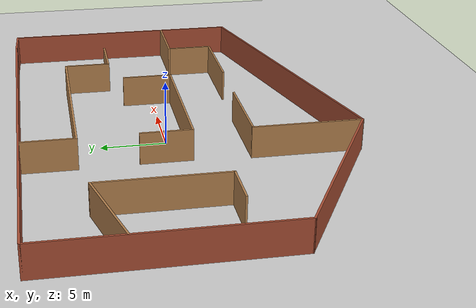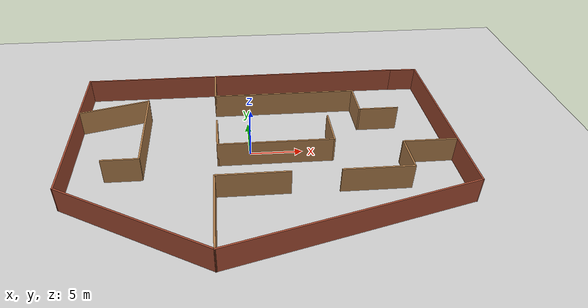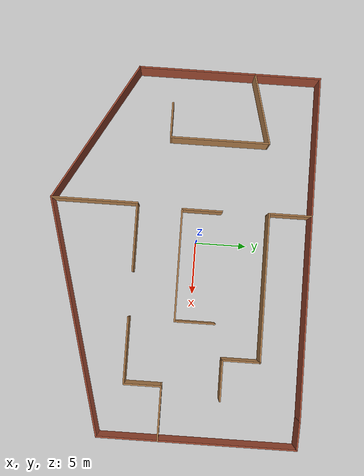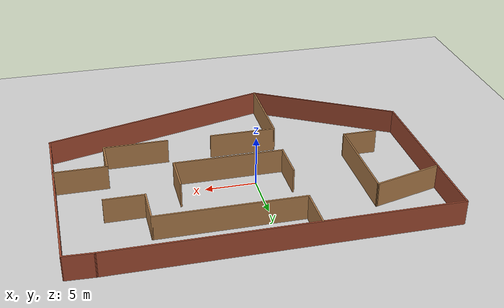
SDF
<sdf version="1.7">
 <world name="default">
  <light name="sun" type="directional">
   <pose>0 0 10 0 -0 0</pose>
   <diffuse>0.8 0.8 0.8 1</diffuse>
   <specular>0.2 0.2 0.2 1</specular>
   <attenuation>
    <range>1000</range>
    <constant>0.9</constant>
    <linear>0.01</linear>
    <quadratic>0.001</quadratic>
   </attenuation>
   <direction>-0.5 0.1 -0.9</direction>
   <spot><inner_angle>0</inner_angle><outer_angle>0</outer_angle><falloff>0</falloff></spot>
  </light>
  <model name="ground_plane">
   <static>1</static>
   <link name="link">
    <collision name="collision">
     <geometry><plane><normal>0 0 1</normal><size>100 100</size></plane></geometry>
     <surface><friction><ode><mu>100</mu><mu2>50</mu2></ode></friction></surface>
    </collision>
    <visual name="visual">
     <cast_shadows>0</cast_shadows>
     <geometry><plane><normal>0 0 1</normal><size>100 100</size></plane></geometry>
     <material>
      <script><uri>file://media/materials/scripts/gazebo.material</uri><name>Gazebo/Grey</name></script>
     </material>
    </visual>
   </link>
  </model>
  <gravity>0 0 -9.8</gravity>
  <magnetic_field>6e-06 2.3e-05 -4.2e-05</magnetic_field>
  <atmosphere type="adiabatic"/>
  <physics type="ode">
   <max_step_size>0.001</max_step_size>
   <real_time_factor>1</real_time_factor>
   <real_time_update_rate>1000</real_time_update_rate>
  </physics>
  <scene><ambient>0.4 0.4 0.4 1</ambient><background>0.7 0.7 0.7 1</background><shadows>1</shadows></scene>
  <audio><device>default</device></audio>
  <spherical_coordinates>
   <surface_model>EARTH_WGS84</surface_model>
   <latitude_deg>0</latitude_deg>
   <longitude_deg>0</longitude_deg>
   <elevation>0</elevation>
   <heading_deg>0</heading_deg>
  </spherical_coordinates>
  <model name="test_world">
   <pose>1.2131 -1.65323 0 0 -0 0</pose>
   <link name="Wall_100">
    <collision name="Wall_100_Collision">
     <geometry><box><size>3.75 0.15 2.5</size></box></geometry>
     <pose>0 0 1.25 0 -0 0</pose>
    </collision>
    <visual name="Wall_100_Visual">
     <pose>0 0 1.25 0 -0 0</pose>
     <geometry><box><size>3.75 0.15 2.5</size></box></geometry>
     <material>
      <script><uri>file://media/materials/scripts/gazebo.material</uri><name>Gazebo/Wood</name></script>
      <ambient>1 1 1 1</ambient>
     </material>
     <meta><layer>0</layer></meta>
    </visual>
    <pose>12.808 -2.5497 0 0 -0 -1.5708</pose>
   </link>
   <link name="Wall_101">
    <collision name="Wall_101_Collision">
     <geometry><box><size>6.5 0.15 2.5</size></box></geometry>
     <pose>0 0 1.25 0 -0 0</pose>
    </collision>
    <visual name="Wall_101_Visual">
     <pose>0 0 1.25 0 -0 0</pose>
     <geometry><box><size>6.5 0.15 2.5</size></box></geometry>
     <material>
      <script><uri>file://media/materials/scripts/gazebo.material</uri><name>Gazebo/Wood</name></script>
      <ambient>1 1 1 1</ambient>
     </material>
     <meta><layer>0</layer></meta>
    </visual>
    <pose>9.63296 -4.3497 0 0 -0 3.14159</pose>
   </link>
   <link name="Wall_103">
    <collision name="Wall_103_Collision">
     <geometry><box><size>4 0.15 2.5</size></box></geometry>
     <pose>0 0 1.25 0 -0 0</pose>
    </collision>
    <visual name="Wall_103_Visual">
     <pose>0 0 1.25 0 -0 0</pose>
     <geometry><box><size>4 0.15 2.5</size></box></geometry>
     <material>
      <script><uri>file://media/materials/scripts/gazebo.material</uri><name>Gazebo/Wood</name></script>
      <ambient>1 1 1 1</ambient>
     </material>
     <meta><layer>0</layer></meta>
    </visual>
    <pose>-4.31004 2.0334 0 0 -0 -1.5708</pose>
   </link>
   <link name="Wall_104">
    <collision name="Wall_104_Collision">
     <geometry><box><size>11 0.15 2.5</size></box></geometry>
     <pose>0 0 1.25 0 -0 0</pose>
    </collision>
    <visual name="Wall_104_Visual">
     <pose>0 0 1.25 0 -0 0</pose>
     <geometry><box><size>11 0.15 2.5</size></box></geometry>
     <material>
      <script><uri>file://media/materials/scripts/gazebo.material</uri><name>Gazebo/Wood</name></script>
      <ambient>1 1 1 1</ambient>
     </material>
     <meta><layer>0</layer></meta>
    </visual>
    <pose>1.11496 0.108402 0 0 -0 0</pose>
   </link>
   <link name="Wall_105">
    <collision name="Wall_105_Collision">
     <geometry><box><size>4 0.15 2.5</size></box></geometry>
     <pose>0 0 1.25 0 -0 0</pose>
    </collision>
    <visual name="Wall_105_Visual">
     <pose>0 0 1.25 0 -0 0</pose>
     <geometry><box><size>4 0.15 2.5</size></box></geometry>
     <material>
      <script><uri>file://media/materials/scripts/gazebo.material</uri><name>Gazebo/Wood</name></script>
      <ambient>1 1 1 1</ambient>
     </material>
     <meta><layer>0</layer></meta>
    </visual>
    <pose>6.53996 2.0334 0 0 -0 1.5708</pose>
   </link>
   <link name="Wall_73">
    <collision name="Wall_73_Collision">
     <geometry><box><size>17.75 0.15 2.5</size></box></geometry>
     <pose>0 0 1.25 0 -0 0</pose>
    </collision>
    <visual name="Wall_73_Visual">
     <pose>0 0 1.25 0 -0 0</pose>
     <geometry><box><size>17.75 0.15 2.5</size></box></geometry>
     <material>
      <script><uri>file://media/materials/scripts/gazebo.material</uri><name>Gazebo/Bricks</name></script>
      <ambient>1 1 1 1</ambient>
     </material>
     <meta><layer>0</layer></meta>
    </visual>
    <pose>-17.9186 3.84948 0 0 -0 1.5708</pose>
   </link>
   <link name="Wall_74">
    <collision name="Wall_74_Collision">
     <geometry><box><size>33.25 0.15 2.5</size></box></geometry>
     <pose>0 0 1.25 0 -0 0</pose>
    </collision>
    <visual name="Wall_74_Visual">
     <pose>0 0 1.25 0 -0 0</pose>
     <geometry><box><size>33.25 0.15 2.5</size></box></geometry>
     <material>
      <script><uri>file://media/materials/scripts/gazebo.material</uri><name>Gazebo/Bricks</name></script>
      <ambient>1 1 1 1</ambient>
     </material>
     <meta><layer>0</layer></meta>
    </visual>
    <pose>-1.36863 12.6495 0 0 -0 0</pose>
   </link>
   <link name="Wall_82">
    <collision name="Wall_82_Collision">
     <geometry><box><size>15.5 0.15 2.5</size></box></geometry>
     <pose>0 0 1.25 0 -0 0</pose>
    </collision>
    <visual name="Wall_82_Visual">
     <pose>0 0 1.25 0 -0 0</pose>
     <geometry><box><size>15.5 0.15 2.5</size></box></geometry>
     <material>
      <script><uri>file://media/materials/scripts/gazebo.material</uri><name>Gazebo/Bricks</name></script>
      <ambient>1 1 1 1</ambient>
     </material>
     <meta><layer>0</layer></meta>
    </visual>
    <pose>-11.2719 -8.78802 0 0 -0 -0.523599</pose>
   </link>
   <link name="Wall_83">
    <collision name="Wall_83_Collision">
     <geometry><box><size>23.5 0.15 2.5</size></box></geometry>
     <pose>0 0 1.25 0 -0 0</pose>
    </collision>
    <visual name="Wall_83_Visual">
     <pose>0 0 1.25 0 -0 0</pose>
     <geometry><box><size>23.5 0.15 2.5</size></box></geometry>
     <material>
      <script><uri>file://media/materials/scripts/gazebo.material</uri><name>Gazebo/Bricks</name></script>
      <ambient>1 1 1 1</ambient>
     </material>
     <meta><layer>0</layer></meta>
    </visual>
    <pose>6.65204 -9.60381 0 0 -0 0.261799</pose>
   </link>
   <link name="Wall_84">
    <collision name="Wall_84_Collision">
     <geometry><box><size>19.25 0.15 2.5</size></box></geometry>
     <pose>0 0 1.25 0 -0 0</pose>
    </collision>
    <visual name="Wall_84_Visual">
     <pose>0 0 1.25 0 -0 0</pose>
     <geometry><box><size>19.25 0.15 2.5</size></box></geometry>
     <material>
      <script><uri>file://media/materials/scripts/gazebo.material</uri><name>Gazebo/Bricks</name></script>
      <ambient>1 1 1 1</ambient>
     </material>
     <meta><layer>0</layer></meta>
    </visual>
    <pose>17.9292 2.9679 0 0 -0 1.5708</pose>
   </link>
   <link name="Wall_85">
    <collision name="Wall_85_Collision">
     <geometry><box><size>2.90101 0.15 2.5</size></box></geometry>
     <pose>0 0 1.25 0 -0 0</pose>
    </collision>
    <visual name="Wall_85_Visual">
     <pose>0 0 1.25 0 -0 0</pose>
     <geometry><box><size>2.90101 0.15 2.5</size></box></geometry>
     <material>
      <script><uri>file://media/materials/scripts/gazebo.material</uri><name>Gazebo/Bricks</name></script>
      <ambient>1 1 1 1</ambient>
     </material>
     <meta><layer>0</layer></meta>
    </visual>
    <pose>16.5553 12.5837 0 0 -0 3.09375</pose>
   </link>
   <link name="Wall_87">
    <collision name="Wall_87_Collision">
     <geometry><box><size>7 0.15 2.5</size></box></geometry>
     <pose>0 0 1.25 0 -0 0</pose>
    </collision>
    <visual name="Wall_87_Visual">
     <pose>0 0 1.25 0 -0 0</pose>
     <geometry><box><size>7 0.15 2.5</size></box></geometry>
     <material>
      <script><uri>file://media/materials/scripts/gazebo.material</uri><name>Gazebo/Wood</name></script>
      <ambient>1 1 1 1</ambient>
     </material>
     <meta><layer>0</layer></meta>
    </visual>
    <pose>-14.5441 7.22536 0 0 -0 0.261799</pose>
   </link>
   <link name="Wall_88">
    <collision name="Wall_88_Collision">
     <geometry><box><size>9.75 0.15 2.5</size></box></geometry>
     <pose>0 0 1.25 0 -0 0</pose>
    </collision>
    <visual name="Wall_88_Visual">
     <pose>0 0 1.25 0 -0 0</pose>
     <geometry><box><size>9.75 0.15 2.5</size></box></geometry>
     <material>
      <script><uri>file://media/materials/scripts/gazebo.material</uri><name>Gazebo/Wood</name></script>
      <ambient>1 1 1 1</ambient>
     </material>
     <meta><layer>0</layer></meta>
    </visual>
    <pose>-11.2359 3.31181 0 0 -0 -1.5708</pose>
   </link>
   <link name="Wall_89">
    <collision name="Wall_89_Collision">
     <geometry><box><size>3.5 0.15 2.5</size></box></geometry>
     <pose>0 0 1.25 0 -0 0</pose>
    </collision>
    <visual name="Wall_89_Visual">
     <pose>0 0 1.25 0 -0 0</pose>
     <geometry><box><size>3.5 0.15 2.5</size></box></geometry>
     <material>
      <script><uri>file://media/materials/scripts/gazebo.material</uri><name>Gazebo/Wood</name></script>
      <ambient>1 1 1 1</ambient>
     </material>
     <meta><layer>0</layer></meta>
    </visual>
    <pose>-12.9109 -1.48819 0 0 -0 3.14159</pose>
   </link>
   <link name="Wall_91">
    <collision name="Wall_91_Collision">
     <geometry><box><size>4.25 0.15 2.5</size></box></geometry>
     <pose>0 0 1.25 0 -0 0</pose>
    </collision>
    <visual name="Wall_91_Visual">
     <pose>0 0 1.25 0 -0 0</pose>
     <geometry><box><size>4.25 0.15 2.5</size></box></geometry>
     <material>
      <script><uri>file://media/materials/scripts/gazebo.material</uri><name>Gazebo/Wood</name></script>
      <ambient>1 1 1 1</ambient>
     </material>
     <meta><layer>0</layer></meta>
    </visual>
    <pose>-4.41584 10.584 0 0 -0 -1.5708</pose>
   </link>
   <link name="Wall_92">
    <collision name="Wall_92_Collision">
     <geometry><box><size>14.5 0.15 2.5</size></box></geometry>
     <pose>0 0 1.25 0 -0 0</pose>
    </collision>
    <visual name="Wall_92_Visual">
     <pose>0 0 1.25 0 -0 0</pose>
     <geometry><box><size>14.5 0.15 2.5</size></box></geometry>
     <material>
      <script><uri>file://media/materials/scripts/gazebo.material</uri><name>Gazebo/Wood</name></script>
      <ambient>1 1 1 1</ambient>
     </material>
     <meta><layer>0</layer></meta>
    </visual>
    <pose>2.75916 8.534 0 0 -0 0</pose>
   </link>
   <link name="Wall_93">
    <collision name="Wall_93_Collision">
     <geometry><box><size>3.75 0.15 2.5</size></box></geometry>
     <pose>0 0 1.25 0 -0 0</pose>
    </collision>
    <visual name="Wall_93_Visual">
     <pose>0 0 1.25 0 -0 0</pose>
     <geometry><box><size>3.75 0.15 2.5</size></box></geometry>
     <material>
      <script><uri>file://media/materials/scripts/gazebo.material</uri><name>Gazebo/Wood</name></script>
      <ambient>1 1 1 1</ambient>
     </material>
     <meta><layer>0</layer></meta>
    </visual>
    <pose>9.93416 6.734 0 0 -0 -1.5708</pose>
   </link>
   <link name="Wall_94">
    <collision name="Wall_94_Collision">
     <geometry><box><size>4 0.15 2.5</size></box></geometry>
     <pose>0 0 1.25 0 -0 0</pose>
    </collision>
    <visual name="Wall_94_Visual">
     <pose>0 0 1.25 0 -0 0</pose>
     <geometry><box><size>4 0.15 2.5</size></box></geometry>
     <material>
      <script><uri>file://media/materials/scripts/gazebo.material</uri><name>Gazebo/Wood</name></script>
      <ambient>1 1 1 1</ambient>
     </material>
     <meta><layer>0</layer></meta>
    </visual>
    <pose>11.8592 4.934 0 0 -0 0</pose>
   </link>
   <link name="Wall_96">
    <collision name="Wall_96_Collision">
     <geometry><box><size>8.5 0.15 2.5</size></box></geometry>
     <pose>0 0 1.25 0 -0 0</pose>
    </collision>
    <visual name="Wall_96_Visual">
     <pose>0 0 1.25 0 -0 0</pose>
     <geometry><box><size>8.5 0.15 2.5</size></box></geometry>
     <material>
      <script><uri>file://media/materials/scripts/gazebo.material</uri><name>Gazebo/Wood</name></script>
      <ambient>1 1 1 1</ambient>
     </material>
     <meta><layer>0</layer></meta>
    </visual>
    <pose>-4.62514 -8.45052 0 0 -0 1.5708</pose>
   </link>
   <link name="Wall_97">
    <collision name="Wall_97_Collision">
     <geometry><box><size>6.75 0.15 2.5</size></box></geometry>
     <pose>0 0 1.25 0 -0 0</pose>
    </collision>
    <visual name="Wall_97_Visual">
     <pose>0 0 1.25 0 -0 0</pose>
     <geometry><box><size>6.75 0.15 2.5</size></box></geometry>
     <material>
      <script><uri>file://media/materials/scripts/gazebo.material</uri><name>Gazebo/Wood</name></script>
      <ambient>1 1 1 1</ambient>
     </material>
     <meta><layer>0</layer></meta>
    </visual>
    <pose>-1.32514 -4.27552 0 0 -0 0</pose>
   </link>
   <link name="Wall_99">
    <collision name="Wall_99_Collision">
     <geometry><box><size>5.25 0.15 2.5</size></box></geometry>
     <pose>0 0 1.25 0 -0 0</pose>
    </collision>
    <visual name="Wall_99_Visual">
     <pose>0 0 1.25 0 -0 0</pose>
     <geometry><box><size>5.25 0.15 2.5</size></box></geometry>
     <material>
      <script><uri>file://media/materials/scripts/gazebo.material</uri><name>Gazebo/Wood</name></script>
      <ambient>1 1 1 1</ambient>
     </material>
     <meta><layer>0</layer></meta>
    </visual>
    <pose>15.358 -0.749698 0 0 -0 3.14159</pose>
   </link>
   <static>1</static>
  </model>
 </world>
</sdf>
